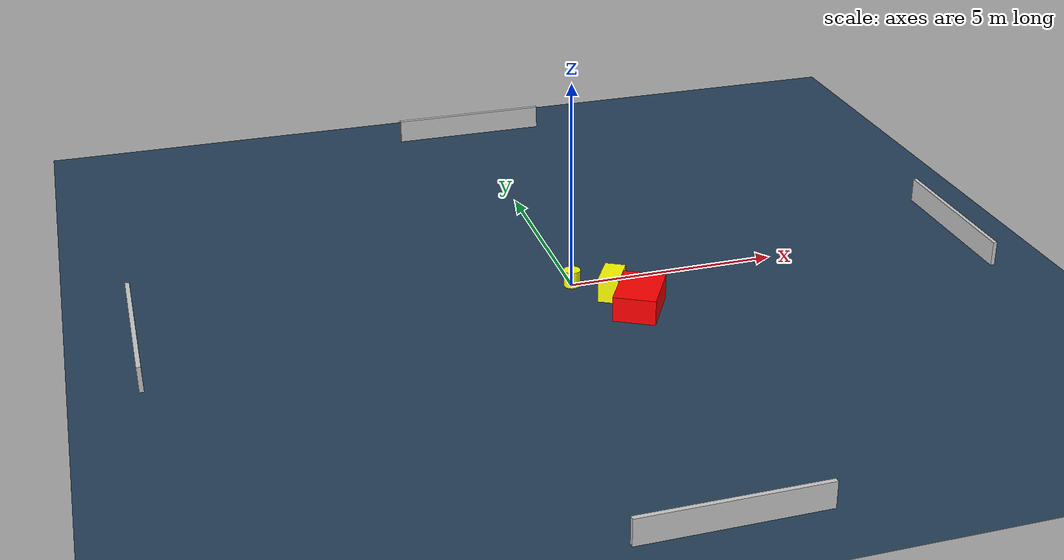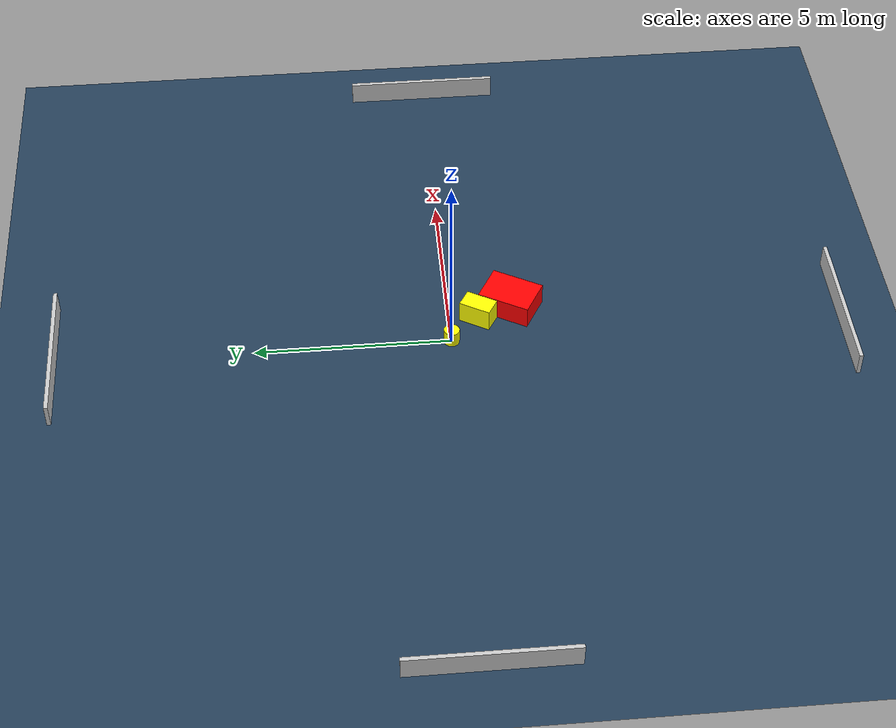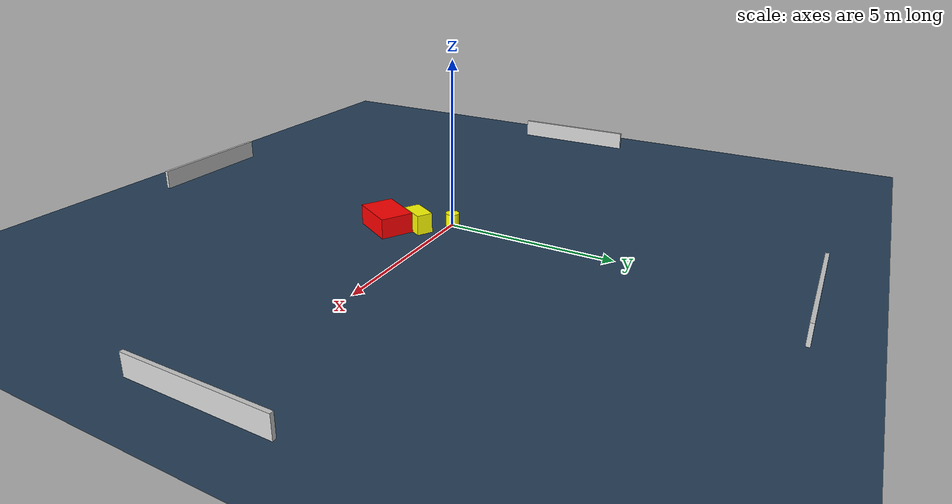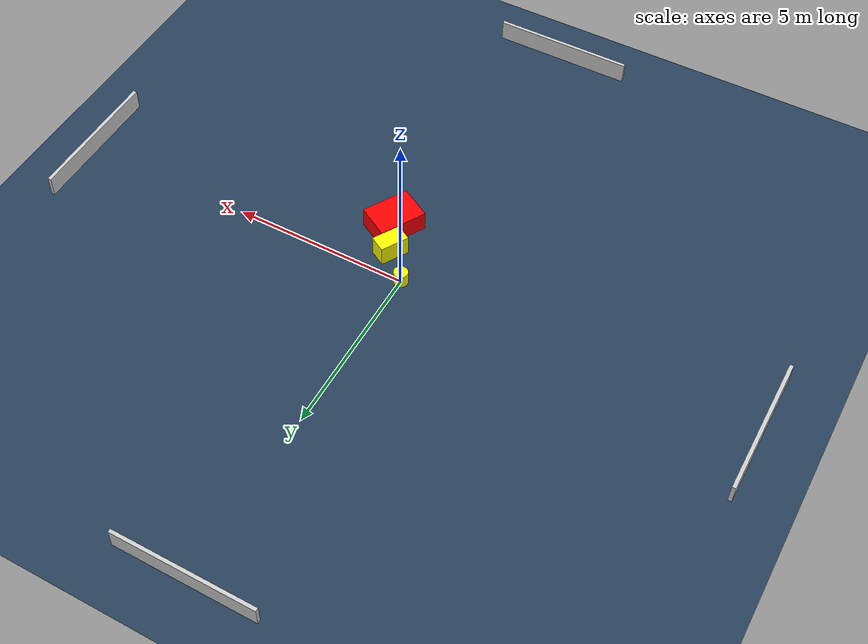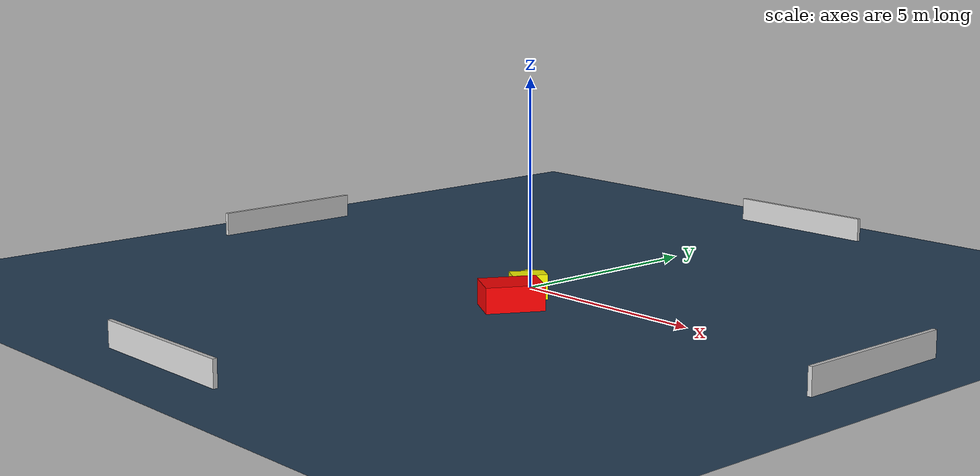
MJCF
<?xml version="1.0" ?>
<mujoco model="generated_environment">
  <option timestep="0.01" integrator="RK4" cone="elliptic"/>
  <default>
    <geom density="1"/>
  </default>
  <asset>
    <texture builtin="gradient" height="3072" name="skybox" rgb1="0.3 0.5 0.7" rgb2="0 0 0" type="skybox" width="512"/>
    <texture builtin="checker" height="300" name="groundplane" rgb1="0.2 0.3 0.4" rgb2="0.1 0.2 0.3" type="2d" width="300"/>
    <material name="groundplane" reflectance="0.2" texrepeat="5 5" texture="groundplane"/>
  </asset>
  <worldbody>
    <light dir="0 0 -1" directional="true" pos="0 0 1.5"/>
    <geom condim="3" friction="0.5 0.005 0.001" material="groundplane" name="floor" pos="0 0 0" size="0 0 0.05" type="plane"/>
    <body name="walls">
      <geom name="wall_1" condim="4" pos="-10.0 0.0 0.3" rgba="0.800000011920929 0.800000011920929 0.800000011920929 1.0" size="0.05 2.0 0.3" type="box"/>
      <geom name="wall_2" condim="4" pos="10.0 0.0 0.3" rgba="0.800000011920929 0.800000011920929 0.800000011920929 1.0" size="0.05 2.0 0.3" type="box"/>
      <geom name="wall_3" condim="4" pos="0.0 -10.0 0.3" rgba="0.800000011920929 0.800000011920929 0.800000011920929 1.0" size="2.0 0.05 0.3" type="box"/>
      <geom name="wall_4" condim="4" pos="0.0 10.0 0.3" rgba="0.800000011920929 0.800000011920929 0.800000011920929 1.0" size="2.0 0.05 0.3" type="box"/>
    </body>
    <body name="robot">
      <joint name="joint_x" type="slide" pos="0 0 0" axis="1 0 0"/>
      <joint name="joint_y" type="slide" pos="0 0 0" axis="0 1 0"/>
      <geom name="robot" type="cylinder" pos="0.0 0.0 0.2" size="0.2 0.2 0.0" mass="5.0" friction="1.0 0.005 0.0001" condim="4" rgba="1.0 1.0 0.0 1.0"/>
    </body>
    <body name="obstacle_1_movable">
      <geom name="obstacle_1_movable" condim="4" pos="0.7342746990845419 -0.743588171002029 0.3" euler="0 0 59.773275305209324" friction="0.0 0.005 0.001" rgba="1.0 1.0 0.0 1.0" size="0.41349812489634186 0.24171597148857124 0.3" type="box" mass="0.1"/>
      <joint type="free"/>
    </body>
    <body name="obstacle_2_static">
      <geom name="obstacle_2_static" condim="4" pos="1.1080099610559309 -1.6095146738319557 0.3" euler="0 0 240.4692974111074" friction="0.0 0.005 0.001" rgba="1.0 0.0 0.0 1.0" size="0.682909102489687 0.4947016615221463 0.3" type="box"/>
    </body>
  </worldbody>
  <actuator>
    <motor name="actuator_x" joint="joint_x" gear="1" ctrlrange="-1 1"/>
    <motor name="actuator_y" joint="joint_y" gear="1" ctrlrange="-1 1"/>
  </actuator>
</mujoco>
